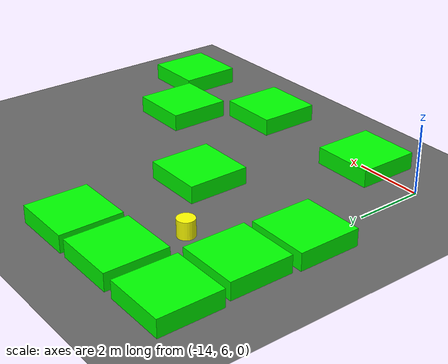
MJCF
<mujoco model="lvl5_corridor_obs10_dlong_depth3_seed2086">
    <compiler angle="degree" coordinate="local" inertiafromgeom="true"/>
    <option integrator="RK4" timestep="0.01"/>

    <asset>
        <texture builtin="gradient" height="100" rgb1="0.6 0.8 1" rgb2="0 0 0" type="skybox" width="100"/>
        <texture name="floor_texture" type="2d" builtin="checker" width="100" height="100" rgb1="0 0 0" rgb2="0.8 0.8 0.8"/>
        <material name="MatPlane" reflectance="0.5" shininess="1" specular="1" texrepeat="10 10" texture="floor_texture"/>
    </asset>

    <!-- Excluding the contact between the agent and the goal, and the agent and the floor -->
    <contact>
        <exclude body1="agent" body2="goal"/>
        <exclude body1 = "agent" body2 = "floor"/>
    </contact>

    <extension>
        <plugin plugin = "mujoco.pid">
            <instance name = "pid1">
                <config key="kp" value="2"/>
                <config key="ki" value="0"/>
                <config key="kd" value="55"/>
            </instance>
        </plugin>
    </extension>

    <worldbody>
        <light cutoff="100" diffuse="1 1 1" dir="-0 0 -1.3" directional="true" exponent="1" pos="0 0 1.3" specular=".1 .1 .1"/>
        <body name="floor" pos="0 0 0">
            <geom name="floor_geom" type="plane" size="20 20 0.1" material="MatPlane"/>
        </body>

                <body name="goal" pos="0.0000 0.0000 0">
            <geom name="goal_geom" type="plane" size="0.5 0.5 1" pos="0 0 0" rgba="1 0 0 1"/>
        </body>

                <body name="agent" pos="-12.0000 12.0000 0.250">
            <joint name="j1" type="slide" axis ="1 0 0 "/>
            <joint name="j2" type="slide" axis ="0 1 0 "/>
            <geom name="agent_geom" type="cylinder" size="0.25 0.25 0.250" rgba="1 1 0 1"/>
        </body>

        <body name="obstacle1" pos="-14.0557 13.9454 0.250">  <geom name="obstacle1_geom" type="box" size="0.9000 0.9000 0.250" rgba="0 1 0 1"/></body>
        <body name="obstacle2" pos="-11.9462 13.9440 0.250">  <geom name="obstacle2_geom" type="box" size="0.9000 0.9000 0.250" rgba="0 1 0 1"/></body>
        <body name="obstacle3" pos="-9.9441 13.9505 0.250">  <geom name="obstacle3_geom" type="box" size="0.9000 0.9000 0.250" rgba="0 1 0 1"/></body>
        <body name="obstacle4" pos="-13.9297 11.9209 0.250">  <geom name="obstacle4_geom" type="box" size="0.9000 0.9000 0.250" rgba="0 1 0 1"/></body>
        <body name="obstacle5" pos="-14.0042 9.9226 0.250">  <geom name="obstacle5_geom" type="box" size="0.9000 0.9000 0.250" rgba="0 1 0 1"/></body>
        <body name="obstacle6" pos="-9.9238 10.0961 0.250">  <geom name="obstacle6_geom" type="box" size="0.9000 0.9000 0.250" rgba="0 1 0 1"/></body>
        <body name="obstacle7" pos="-6.0553 7.9055 0.250">  <geom name="obstacle7_geom" type="box" size="0.9000 0.9000 0.250" rgba="0 1 0 1"/></body>
        <body name="obstacle8" pos="-12.0277 5.9308 0.250">  <geom name="obstacle8_geom" type="box" size="0.9000 0.9000 0.250" rgba="0 1 0 1"/></body>
        <body name="obstacle9" pos="-7.9538 5.9549 0.250">  <geom name="obstacle9_geom" type="box" size="0.9000 0.9000 0.250" rgba="0 1 0 1"/></body>
        <body name="obstacle10" pos="-4.0842 6.0178 0.250">  <geom name="obstacle10_geom" type="box" size="0.9000 0.9000 0.250" rgba="0 1 0 1"/></body>

    </worldbody>

    <sensor>
<!-- SENSORS -->

        <distance name="dist1" geom1="agent_geom" geom2="obstacle1_geom" cutoff="1.5"/>
        <distance name="dist2" geom1="agent_geom" geom2="obstacle2_geom" cutoff="1.5"/>
        <distance name="dist3" geom1="agent_geom" geom2="obstacle3_geom" cutoff="1.5"/>
        <distance name="dist4" geom1="agent_geom" geom2="obstacle4_geom" cutoff="1.5"/>
        <distance name="dist5" geom1="agent_geom" geom2="obstacle5_geom" cutoff="1.5"/>
        <distance name="dist6" geom1="agent_geom" geom2="obstacle6_geom" cutoff="1.5"/>
        <distance name="dist7" geom1="agent_geom" geom2="obstacle7_geom" cutoff="1.5"/>
        <distance name="dist8" geom1="agent_geom" geom2="obstacle8_geom" cutoff="1.5"/>
        <distance name="dist9" geom1="agent_geom" geom2="obstacle9_geom" cutoff="1.5"/>
        <distance name="dist10" geom1="agent_geom" geom2="obstacle10_geom" cutoff="1.5"/>
</sensor>

    <actuator>
        <plugin joint="j1" plugin="mujoco.pid" instance="pid1" />
        <plugin joint="j2" plugin="mujoco.pid" instance="pid1"/>
    </actuator>
</mujoco>
